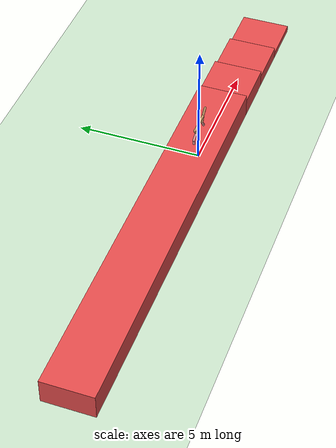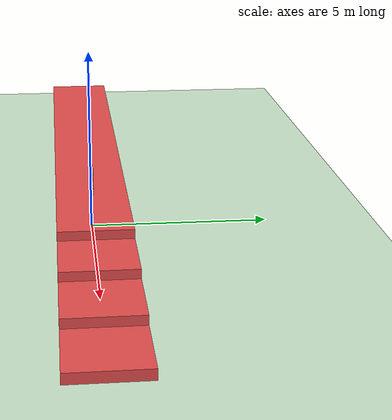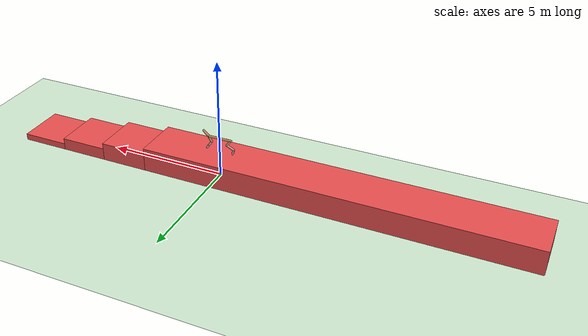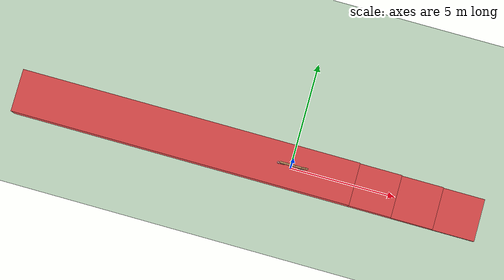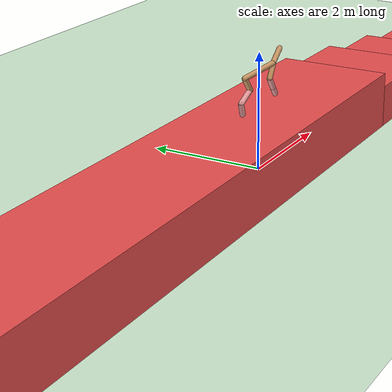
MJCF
<mujoco model="cheetah">
  <compiler angle="radian" coordinate="local" inertiafromgeom="true" settotalmass="14"/>
  <default>
    <joint armature=".1" damping=".01" limited="true" solimplimit="0 .8 .03" solreflimit=".02 1" stiffness="8"/>
    <geom conaffinity="0" condim="3" contype="1" friction=".4 .1 .1" rgba="0.8 0.6 .4 1" solimp="0.0 0.8 0.01" solref="0.02 1"/>
    <motor ctrllimited="true" ctrlrange="-1 1"/>
  </default>
  <size nstack="300000" nuser_geom="1"/>
  <option gravity="0 0 -9.81" timestep="0.01"/>
  <asset>
    <texture builtin="gradient" height="100" rgb1="1 1 1" rgb2="0 0 0" type="skybox" width="100"/>
    <texture builtin="flat" height="1278" mark="cross" markrgb="1 1 1" name="texgeom" random="0.01" rgb1="0.8 0.6 0.4" rgb2="0.8 0.6 0.4" type="cube" width="127"/>
    <texture builtin="checker" height="100" name="texplane" rgb1="0 0 0" rgb2="0.8 0.8 0.8" type="2d" width="100"/>
    <material name="MatPlane" reflectance="0.5" shininess="1" specular="1" texrepeat="60 60" texture="texplane"/>
    <material name="geom" texture="texgeom" texuniform="true"/>
  </asset>
  <worldbody>
    <light cutoff="100" diffuse="1 1 1" dir="-0 0 -1.3" directional="true" exponent="1" pos="0 0 1.3" specular=".1 .1 .1"/>
    <geom conaffinity="1" condim="3" material="MatPlane" name="floor" pos="0 0 0" rgba="0.8 0.9 0.8 1" size="40 40 40" type="plane"/>
    <body name="torso" pos="0 0 .7">

<!--
 trackcom,
-->
      <camera name="track" mode="trackcom" pos="0 -3 0.3" xyaxes="1 0 0 0 0 1"/>

      <joint armature="0" axis="1 0 0" damping="0" limited="false" name="rootx" pos="0 0 0" stiffness="0" type="slide"/>
      <joint armature="0" axis="0 0 1" damping="0" limited="false" name="rootz" pos="0 0 0" stiffness="0" type="slide"/>
      <joint armature="0" axis="0 1 0" damping="0" limited="false" name="rooty" pos="0 0 0" stiffness="0" type="hinge"/>
      <geom fromto="-.5 0 1 .5 0 1" name="torso" size="0.046" type="capsule"/>
      <geom axisangle="0 1 0 .87" name="head" pos=".6 0 1.1" size="0.046 .15" type="capsule"/>
      <body name="bthigh" pos="-.5 0 0">
        <joint axis="0 1 0" damping="6" name="bthigh" pos="0 0 1" range="-.52 1.05" stiffness="240" type="hinge"/>
        <geom axisangle="0 1 0 -3.8" name="bthigh" pos=".1 0 0.87" size="0.046 .145" type="capsule"/>
        <body name="bshin" pos=".16 0 -.25">
          <joint axis="0 1 0" damping="4.5" name="bshin" pos="0 0 1" range="-.785 .785" stiffness="180" type="hinge"/>
          <geom axisangle="0 1 0 -2.03" name="bshin" pos="-.14 0 0.93" rgba="0.9 0.6 0.6 1" size="0.046 .15" type="capsule"/>
          <body name="bfoot" pos="-.28 0 -.14">
            <joint axis="0 1 0" damping="3" name="bfoot" pos="0 0 1" range="-.4 .785" stiffness="120" type="hinge"/>
            <geom axisangle="0 1 0 -.27" name="bfoot" pos=".03 0 0.903" rgba="0.9 0.6 0.6 1" size="0.046 .094" type="capsule"/>
          </body>
        </body>
      </body>
      <body name="fthigh" pos=".5 0 0">
        <joint axis="0 1 0" damping="4.5" name="fthigh" pos="0 0 1" range="-1 .7" stiffness="180" type="hinge"/>
        <geom axisangle="0 1 0 .52" name="fthigh" pos="-.07 0 0.88" size="0.046 .133" type="capsule"/>
        <body name="fshin" pos="-.14 0 -.24">
          <joint axis="0 1 0" damping="3" name="fshin" pos="0 0 1" range="-1.2 .87" stiffness="120" type="hinge"/>
          <geom axisangle="0 1 0 -.6" name="fshin" pos=".065 0 0.91" rgba="0.9 0.6 0.6 1" size="0.046 .106" type="capsule"/>
          <body name="ffoot" pos=".13 0 -.18">
            <joint axis="0 1 0" damping="1.5" name="ffoot" pos="0 0 1" range="-.5 .5" stiffness="60" type="hinge"/>
            <geom axisangle="0 1 0 -.6" name="ffoot" pos=".045 0 0.93" rgba="0.9 0.6 0.6 1" size="0.046 .07" type="capsule"/>
          </body>
        </body>
      </body>
    </body>
    <geom name="curb0" pos="-5 0 0" conaffinity="1" rgba="0.9 0.3 0.3 1" size="8 1 1" type="box"/>
    <geom name="curb1" pos="4 0 0" conaffinity="1" rgba="0.9 0.3 0.3 1" size="1 1 0.75" type="box"/>
    <geom name="curb2" pos="6 0 0" conaffinity="1" rgba="0.9 0.3 0.3 1" size="1 1 0.5" type="box"/>
    <geom name="curb3" pos="8 0 0" conaffinity="1" rgba="0.9 0.3 0.3 1" size="1 1 0.25" type="box"/>
										<!--brick width height -->
										<!--height=0.6 0.5 -->
  </worldbody>
  <actuator>
    <motor gear="120" joint="bthigh" name="bthigh"/>
    <motor gear="90" joint="bshin" name="bshin"/>
    <motor gear="60" joint="bfoot" name="bfoot"/>
    <motor gear="120" joint="fthigh" name="fthigh"/>
    <motor gear="60" joint="fshin" name="fshin"/>
    <motor gear="30" joint="ffoot" name="ffoot"/>
  </actuator>
</mujoco>
